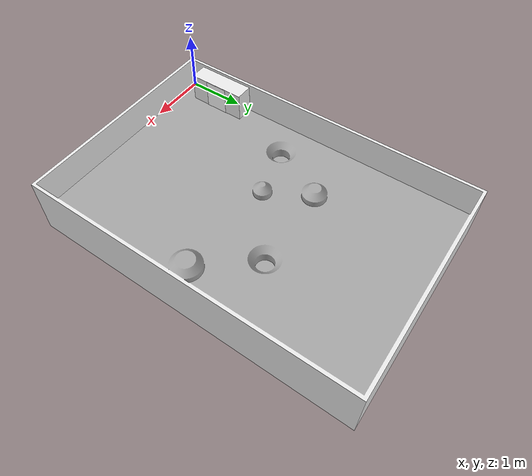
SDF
<!--THis is the example in the tutorial -->

<?xml version="1.0" ?>
<sdf version="1.4">
  <world name="default">
    <include>
      <uri>model://sun</uri>
    </include>
    <model name="arena">
        <static>true</static>
        <pose>1.8 2.7 0  -1.57079632679 0 0</pose>
        <link name="body">
        <visual name="visual">
          <geometry>
            <mesh><uri>file://models/RMCWorld.dae</uri></mesh>
          </geometry>
        </visual>
        <collision name="collision">
          <geometry>
            <mesh><uri>file://models/RMCWorld.dae</uri></mesh>
          </geometry>
        </collision>
      </link>
    </model>

    <model name='aruco_markermap'>
    <static>true</static>
    <pose>0.31 0.75 0.25 0 1.5708 0</pose>
    <link name='marker'>
      <pose frame=''>0 0 0 0 0 0</pose>
      <visual name='visual'>
        <geometry>
          <box>
            <size>0.5 0.386 1e-5</size>
          </box>
        </geometry>
        <material>
          <script>
            <uri>model://aruco_markermap/materials/scripts</uri>
            <uri>model://aruco_markermap/materials/textures</uri>
            <name>ArucoMarkerMap/Marker</name>
          </script>
          <ambient>1 1 1 1</ambient>
          <diffuse>1 1 1 1</diffuse>
          <specular>0 0 0 1</specular>
          <emissive>1 1 1 0</emissive>
          <shader type='vertex'>
            <normal_map>__default__</normal_map>
          </shader>
        </material>
        <pose frame=''>0 0 0 0 -0 0</pose>
        <cast_shadows>1</cast_shadows>
        <transparency>0</transparency>
      </visual>
      <collision name='collision'>
        <laser_retro>0</laser_retro>
        <max_contacts>10</max_contacts>
        <pose frame=''>0 0 0 0 -0 0</pose>
        <geometry>
          <box>
            <size>0.5 0.386 1e-05</size>
          </box>
        </geometry>
      </collision>
    </link>

    <link name='marker_pad'>
      <pose frame='marker'>0 0 -1e-5 0 -0 0</pose>
      <visual name='visual'>
        <geometry>
          <box>
            <size>0.5 0.386 1e-5</size>
          </box>
        </geometry>
        <material>
          <lighting>1</lighting>
          <script>
            <uri>file://media/materials/scripts/gazebo.material</uri>
            <name>Gazebo/White</name>
          </script>
          <ambient>0.3 0.3 0.3 1</ambient>
          <diffuse>0.7 0.7 0.7 1</diffuse>
          <specular>0.01 0.01 0.01 1</specular>
          <emissive>1 1 1 0</emissive>
          <shader type='vertex'>
            <normal_map>__default__</normal_map>
          </shader>
        </material>
        <cast_shadows>1</cast_shadows>
        <transparency>0</transparency>
      </visual>
      <collision name='collision'>
        <laser_retro>0</laser_retro>
        <max_contacts>10</max_contacts>
        <pose frame=''>0 0 0 0 -0 0</pose>
        <geometry>
          <box>
            <size>0.5 0.386 1e-5</size>
          </box>
        </geometry>
      </collision>
    </link>

    <joint name='marker_JOINT_marker_pad' type='revolute'>
      <parent>marker</parent>
      <child>marker_pad</child>
      <pose frame=''>0 0 0 0 -0 0</pose>
      <axis>
        <xyz>0 0 1</xyz>
        <limit>
          <upper>0</upper>
          <lower>0</lower>
        </limit>
      </axis>
    </joint>

    <static>1</static>
    <allow_auto_disable>1</allow_auto_disable>

  </model>
  </world>
</sdf>
